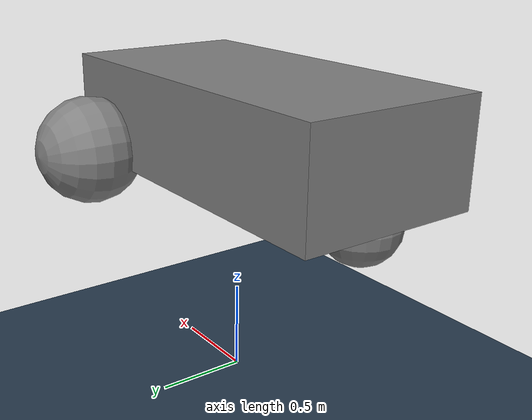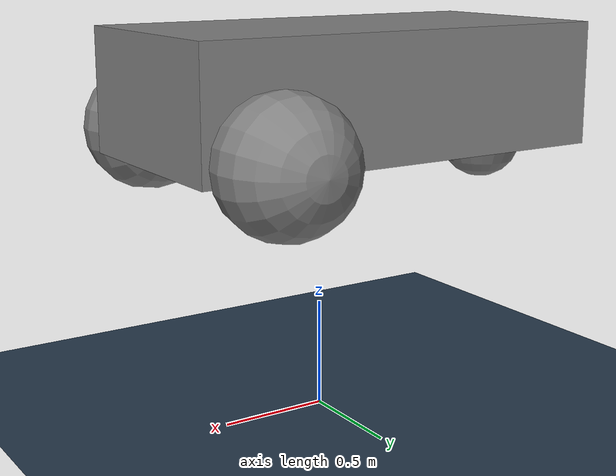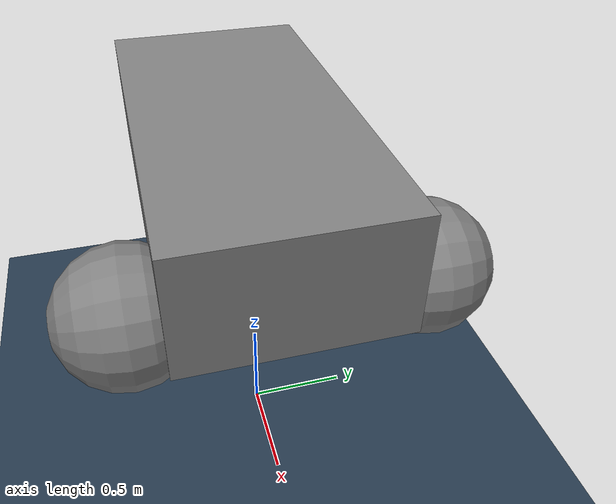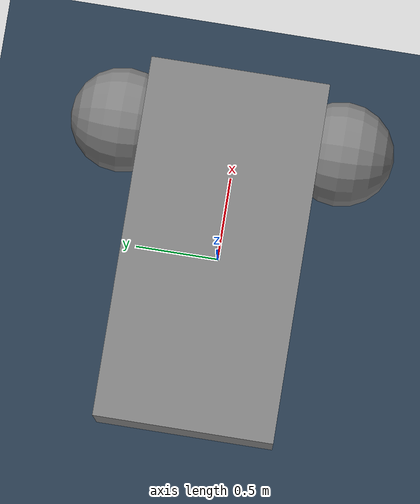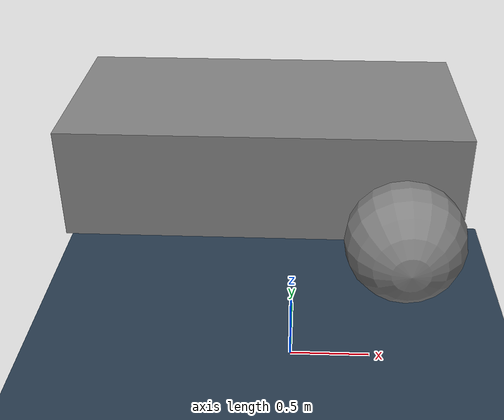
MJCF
<mujoco model="diff_drive">
  <compiler angle="radian" meshdir="../urdf/"/>
  <asset>
        <texture type="skybox" builtin="gradient" rgb1="0.3 0.5 0.7" rgb2="0 0 0" width="512" height="512" />
        <texture name="texplane" type="2d" builtin="checker" rgb1=".2 .3 .4" rgb2=".1 0.15 0.2" width="512" height="512" mark="cross" markrgb=".8 .8 .8" />
        <material name="matplane" reflectance="0.3" texture="texplane" texrepeat="1 1" texuniform="true" />
  </asset>

  <default>
     <joint type="hinge" limited="true"/>
  </default>

  <worldbody>
    <light directional="true" diffuse=".4 .4 .4" specular="0.1 0.1 0.1" pos="0 0 5.0" dir="0 0 -1" castshadow="false" />
    <light directional="true" diffuse=".6 .6 .6" specular="0.2 0.2 0.2" pos="0 0 4" dir="0 0 -1" />
    <geom name="floor" type="plane" pos="0 0 0" size="15 15 1" material="matplane" margin="0.001" condim="3" friction="1 0.005 0.0001" />

    <body name="chassis" pos="0 0 1">
      <freejoint name="root"/>
      <inertial pos="-0.151427 0 0.5" quat="0 0.707107 0 0.707107" mass="1.14395" diaginertia="0.481014 0.416519 0.126164"/>
      <geom size="1.00571 0.5 0.284363" pos="-0.151427 0 0.5" type="box"/>
      <geom size="1.00571 0.5 0.284363" pos="-0.151427 0 0.5" type="box" contype="0" conaffinity="0" group="1" density="0"/>
      <body name="left_wheel" pos="0.554283 0.625029 0.3" quat="0.707141 -0.707073 0 0">
        <inertial pos="0 0 0" mass="2" diaginertia="0.145833 0.145833 0.125"/>
        <joint name="left_wheel_joint" pos="0 0 0" axis="0 0 1" limited="false" damping="0.2"/>
        <geom size="0.3"/>
        <geom size="0.3" contype="0" conaffinity="0" group="1" density="0"/>
      </body>
      <body name="right_wheel" pos="0.554283 -0.625029 0.3" quat="0.707141 -0.707073 0 0">
        <inertial pos="0 0 0" mass="2" diaginertia="0.145833 0.145833 0.125"/>
        <joint name="right_wheel_joint" pos="0 0 0" axis="0 0 1" limited="false" damping="0.2"/>
        <geom size="0.3"/>
        <geom size="0.3" contype="0" conaffinity="0" group="1" density="0"/>
      </body>
      <body name="caster" pos="-0.957138 0 0.2">
        <inertial pos="-0.957138 0 0.2" mass="0.005" diaginertia="0.1 0.1 0.1"/>
        <geom size="0.2"/>
        <geom size="0.2" contype="0" conaffinity="0" group="1" density="0"/>
      </body>
    </body>
  </worldbody>
  <contact>
      <exclude body1="chassis" body2="left_wheel" />
      <exclude body1="chassis" body2="right_wheel" />
  </contact>
  <actuator>
    <velocity name="Right_wheel_joint" joint="right_wheel_joint"/>
    <velocity name="Left_wheel_joint" joint="left_wheel_joint"/>
  </actuator>
</mujoco>
